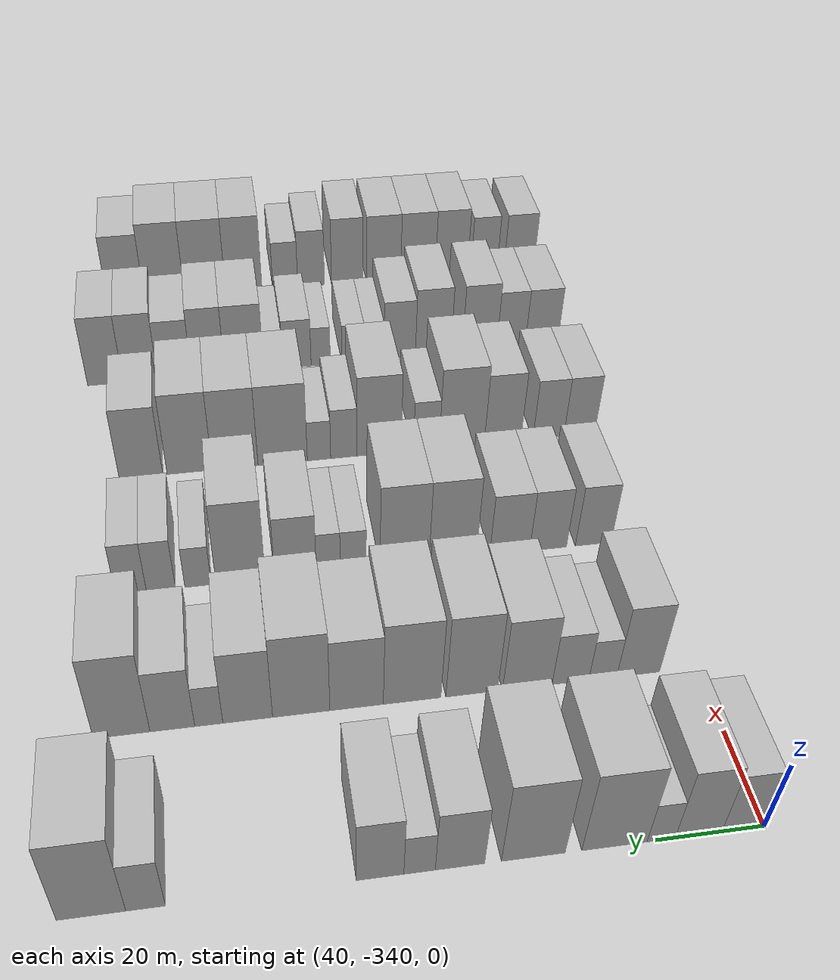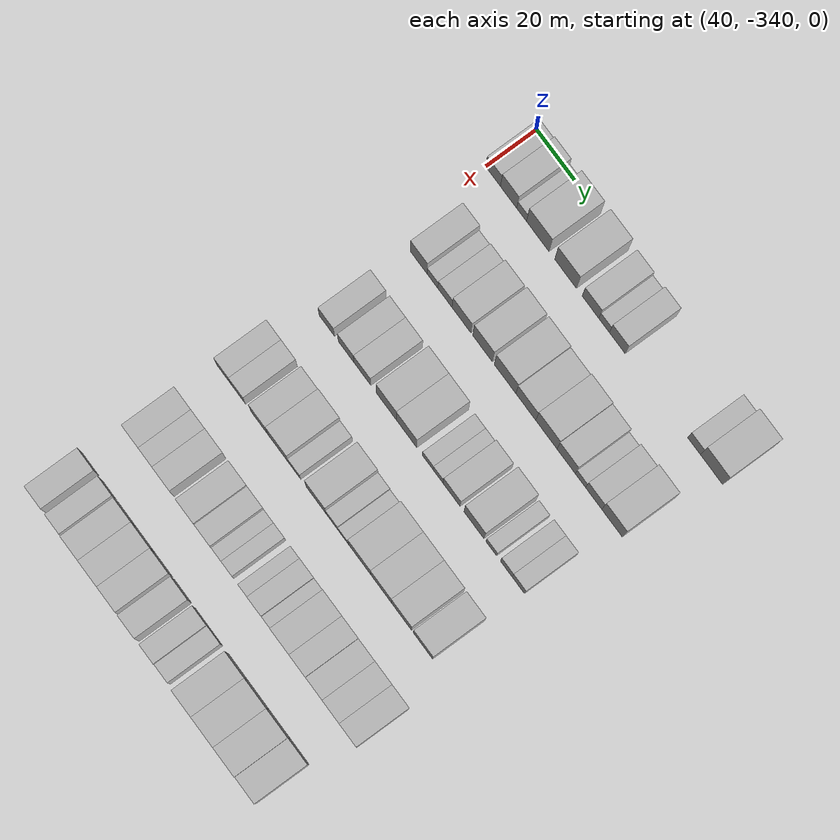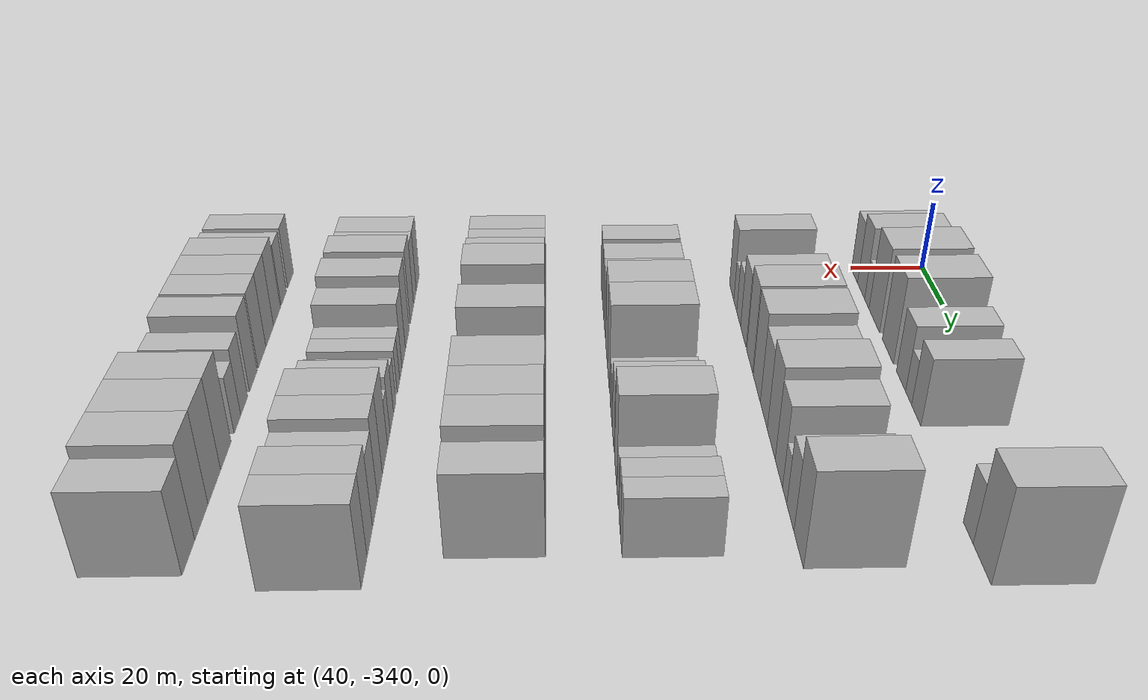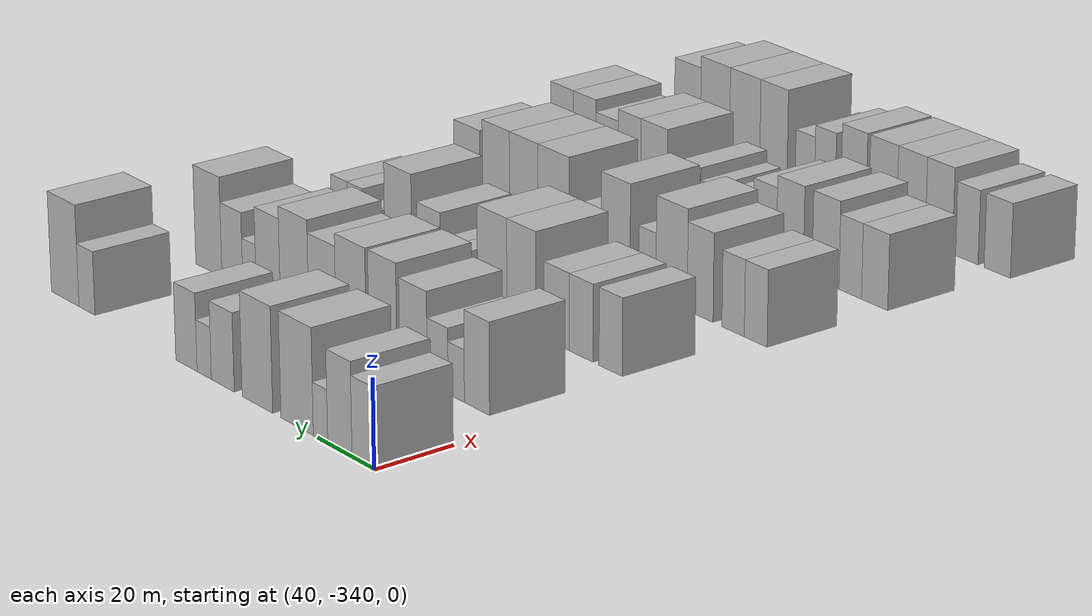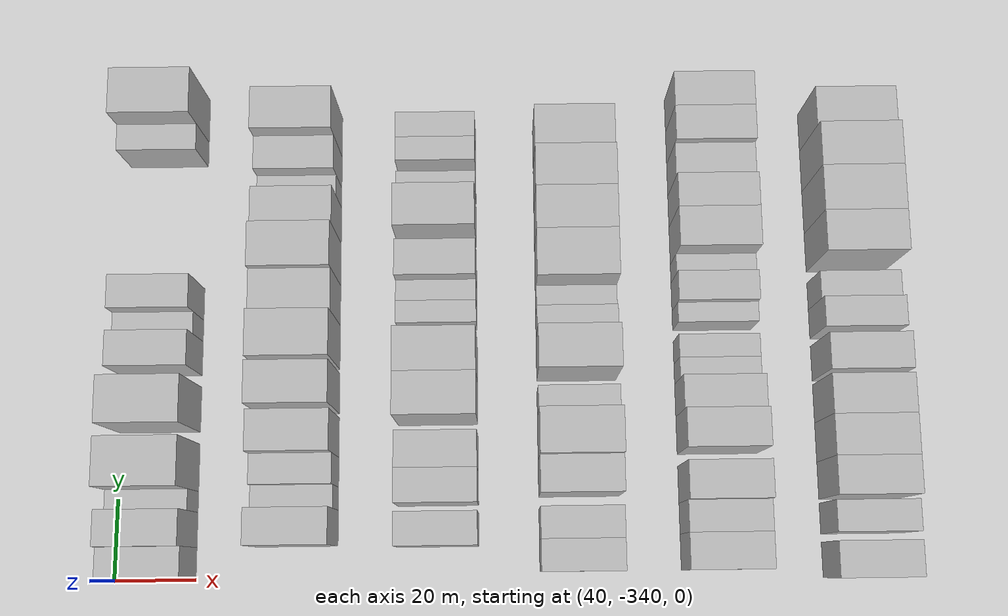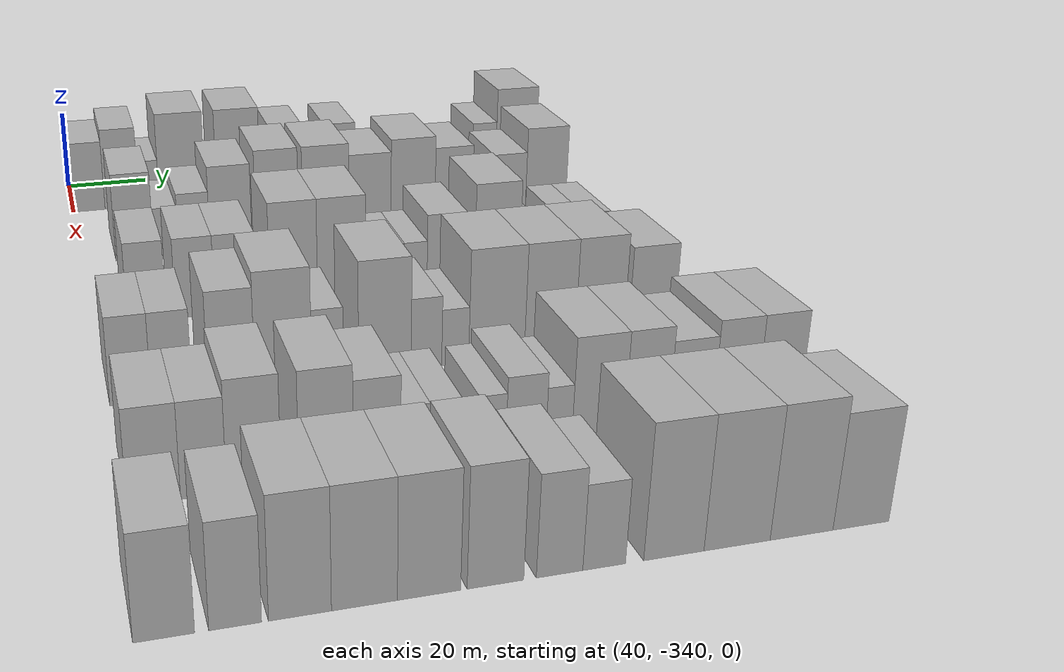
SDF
<sdf version="1.6">
 <world name="default">
  <model name="building_25">
   <static>1</static>
   <pose>50.0000 -335.9181 0 0.000000 0.000000 0.000000</pose>
   <link name="link">
    <pose>0 0 9.00 0 0 0</pose>
    <collision name="collision"><geometry><box><size>20.0000 7.7223 18.0000</size></box></geometry></collision>
    <visual name="visual">
     <cast_shadows>0</cast_shadows>
     <geometry><box><size>20.0000 7.7223 18.0000</size></box></geometry>
     <material>
      <script>
       <uri>model://HANNAS_wall/materials/scripts</uri>
       <uri>model://HANNAS_wall/materials/textures</uri>
       <name>vrc/HANNAS_wall</name>
      </script>
     </material>
    </visual>
   </link>
  </model>
  <model name="building_26">
   <static>1</static>
   <pose>50.0000 -327.7426 0 0.000000 0.000000 0.000000</pose>
   <link name="link">
    <pose>0 0 10.50 0 0 0</pose>
    <collision name="collision"><geometry><box><size>20.0000 8.6288 21.0000</size></box></geometry></collision>
    <visual name="visual">
     <cast_shadows>0</cast_shadows>
     <geometry><box><size>20.0000 8.6288 21.0000</size></box></geometry>
     <material>
      <script>
       <uri>model://HANNAS_wall/materials/scripts</uri>
       <uri>model://HANNAS_wall/materials/textures</uri>
       <name>vrc/HANNAS_wall</name>
      </script>
     </material>
    </visual>
   </link>
  </model>
  <model name="building_27">
   <static>1</static>
   <pose>50.0000 -320.8483 0 0.000000 0.000000 0.000000</pose>
   <link name="link">
    <pose>0 0 6.00 0 0 0</pose>
    <collision name="collision"><geometry><box><size>20.0000 5.1598 12.0000</size></box></geometry></collision>
    <visual name="visual">
     <cast_shadows>0</cast_shadows>
     <geometry><box><size>20.0000 5.1598 12.0000</size></box></geometry>
     <material>
      <script>
       <uri>model://HANNAS_wall/materials/scripts</uri>
       <uri>model://HANNAS_wall/materials/textures</uri>
       <name>vrc/HANNAS_wall</name>
      </script>
     </material>
    </visual>
   </link>
  </model>
  <model name="building_28">
   <static>1</static>
   <pose>50.0000 -312.3385 0 0.000000 0.000000 0.000000</pose>
   <link name="link">
    <pose>0 0 12.00 0 0 0</pose>
    <collision name="collision"><geometry><box><size>20.0000 11.8596 24.0000</size></box></geometry></collision>
    <visual name="visual">
     <cast_shadows>0</cast_shadows>
     <geometry><box><size>20.0000 11.8596 24.0000</size></box></geometry>
     <material>
      <script>
       <uri>model://HANNAS_wall/materials/scripts</uri>
       <uri>model://HANNAS_wall/materials/textures</uri>
       <name>vrc/HANNAS_wall</name>
      </script>
     </material>
    </visual>
   </link>
  </model>
  <model name="building_29">
   <static>1</static>
   <pose>50.0000 -297.6887 0 0.000000 0.000000 0.000000</pose>
   <link name="link">
    <pose>0 0 12.00 0 0 0</pose>
    <collision name="collision"><geometry><box><size>20.0000 11.4401 24.0000</size></box></geometry></collision>
    <visual name="visual">
     <cast_shadows>0</cast_shadows>
     <geometry><box><size>20.0000 11.4401 24.0000</size></box></geometry>
     <material>
      <script>
       <uri>model://HANNAS_wall/materials/scripts</uri>
       <uri>model://HANNAS_wall/materials/textures</uri>
       <name>vrc/HANNAS_wall</name>
      </script>
     </material>
    </visual>
   </link>
  </model>
  <model name="building_30">
   <static>1</static>
   <pose>50.0000 -284.5930 0 0.000000 0.000000 0.000000</pose>
   <link name="link">
    <pose>0 0 9.00 0 0 0</pose>
    <collision name="collision"><geometry><box><size>20.0000 8.7511 18.0000</size></box></geometry></collision>
    <visual name="visual">
     <cast_shadows>0</cast_shadows>
     <geometry><box><size>20.0000 8.7511 18.0000</size></box></geometry>
     <material>
      <script>
       <uri>model://HANNAS_wall/materials/scripts</uri>
       <uri>model://HANNAS_wall/materials/textures</uri>
       <name>vrc/HANNAS_wall</name>
      </script>
     </material>
    </visual>
   </link>
  </model>
  <model name="building_31">
   <static>1</static>
   <pose>50.0000 -277.4589 0 0.000000 0.000000 0.000000</pose>
   <link name="link">
    <pose>0 0 6.00 0 0 0</pose>
    <collision name="collision"><geometry><box><size>20.0000 5.5171 12.0000</size></box></geometry></collision>
    <visual name="visual">
     <cast_shadows>0</cast_shadows>
     <geometry><box><size>20.0000 5.5171 12.0000</size></box></geometry>
     <material>
      <script>
       <uri>model://HANNAS_wall/materials/scripts</uri>
       <uri>model://HANNAS_wall/materials/textures</uri>
       <name>vrc/HANNAS_wall</name>
      </script>
     </material>
    </visual>
   </link>
  </model>
  <model name="building_32">
   <static>1</static>
   <pose>50.0000 -270.5538 0 0.000000 0.000000 0.000000</pose>
   <link name="link">
    <pose>0 0 9.00 0 0 0</pose>
    <collision name="collision"><geometry><box><size>20.0000 8.2931 18.0000</size></box></geometry></collision>
    <visual name="visual">
     <cast_shadows>0</cast_shadows>
     <geometry><box><size>20.0000 8.2931 18.0000</size></box></geometry>
     <material>
      <script>
       <uri>model://HANNAS_wall/materials/scripts</uri>
       <uri>model://HANNAS_wall/materials/textures</uri>
       <name>vrc/HANNAS_wall</name>
      </script>
     </material>
    </visual>
   </link>
  </model>
  <model name="building_33">
   <static>1</static>
   <pose>50.0000 -230.4145 0 0.000000 0.000000 0.000000</pose>
   <link name="link">
    <pose>0 0 7.50 0 0 0</pose>
    <collision name="collision"><geometry><box><size>20.0000 6.6618 15.0000</size></box></geometry></collision>
    <visual name="visual">
     <cast_shadows>0</cast_shadows>
     <geometry><box><size>20.0000 6.6618 15.0000</size></box></geometry>
     <material>
      <script>
       <uri>model://HANNAS_wall/materials/scripts</uri>
       <uri>model://HANNAS_wall/materials/textures</uri>
       <name>vrc/HANNAS_wall</name>
      </script>
     </material>
    </visual>
   </link>
  </model>
  <model name="building_34">
   <static>1</static>
   <pose>50.0000 -221.2916 0 0.000000 0.000000 0.000000</pose>
   <link name="link">
    <pose>0 0 12.00 0 0 0</pose>
    <collision name="collision"><geometry><box><size>20.0000 11.5840 24.0000</size></box></geometry></collision>
    <visual name="visual">
     <cast_shadows>0</cast_shadows>
     <geometry><box><size>20.0000 11.5840 24.0000</size></box></geometry>
     <material>
      <script>
       <uri>model://HANNAS_wall/materials/scripts</uri>
       <uri>model://HANNAS_wall/materials/textures</uri>
       <name>vrc/HANNAS_wall</name>
      </script>
     </material>
    </visual>
   </link>
  </model>
  <model name="building_134">
   <static>1</static>
   <pose>85.0000 -327.7752 0 0.000000 0.000000 0.000000</pose>
   <link name="link">
    <pose>0 0 10.50 0 0 0</pose>
    <collision name="collision"><geometry><box><size>20.0000 8.8171 21.0000</size></box></geometry></collision>
    <visual name="visual">
     <cast_shadows>0</cast_shadows>
     <geometry><box><size>20.0000 8.8171 21.0000</size></box></geometry>
     <material>
      <script>
       <uri>model://HANNAS_wall/materials/scripts</uri>
       <uri>model://HANNAS_wall/materials/textures</uri>
       <name>vrc/HANNAS_wall</name>
      </script>
     </material>
    </visual>
   </link>
  </model>
  <model name="building_135">
   <static>1</static>
   <pose>85.0000 -320.5003 0 0.000000 0.000000 0.000000</pose>
   <link name="link">
    <pose>0 0 6.00 0 0 0</pose>
    <collision name="collision"><geometry><box><size>20.0000 5.7327 12.0000</size></box></geometry></collision>
    <visual name="visual">
     <cast_shadows>0</cast_shadows>
     <geometry><box><size>20.0000 5.7327 12.0000</size></box></geometry>
     <material>
      <script>
       <uri>model://HANNAS_wall/materials/scripts</uri>
       <uri>model://HANNAS_wall/materials/textures</uri>
       <name>vrc/HANNAS_wall</name>
      </script>
     </material>
    </visual>
   </link>
  </model>
  <model name="building_136">
   <static>1</static>
   <pose>85.0000 -313.9180 0 0.000000 0.000000 0.000000</pose>
   <link name="link">
    <pose>0 0 7.50 0 0 0</pose>
    <collision name="collision"><geometry><box><size>20.0000 7.4320 15.0000</size></box></geometry></collision>
    <visual name="visual">
     <cast_shadows>0</cast_shadows>
     <geometry><box><size>20.0000 7.4320 15.0000</size></box></geometry>
     <material>
      <script>
       <uri>model://HANNAS_wall/materials/scripts</uri>
       <uri>model://HANNAS_wall/materials/textures</uri>
       <name>vrc/HANNAS_wall</name>
      </script>
     </material>
    </visual>
   </link>
  </model>
  <model name="building_137">
   <static>1</static>
   <pose>85.0000 -305.1962 0 0.000000 0.000000 0.000000</pose>
   <link name="link">
    <pose>0 0 10.50 0 0 0</pose>
    <collision name="collision"><geometry><box><size>20.0000 10.0117 21.0000</size></box></geometry></collision>
    <visual name="visual">
     <cast_shadows>0</cast_shadows>
     <geometry><box><size>20.0000 10.0117 21.0000</size></box></geometry>
     <material>
      <script>
       <uri>model://HANNAS_wall/materials/scripts</uri>
       <uri>model://HANNAS_wall/materials/textures</uri>
       <name>vrc/HANNAS_wall</name>
      </script>
     </material>
    </visual>
   </link>
  </model>
  <model name="building_138">
   <static>1</static>
   <pose>85.0000 -294.0328 0 0.000000 0.000000 0.000000</pose>
   <link name="link">
    <pose>0 0 12.00 0 0 0</pose>
    <collision name="collision"><geometry><box><size>20.0000 10.3150 24.0000</size></box></geometry></collision>
    <visual name="visual">
     <cast_shadows>0</cast_shadows>
     <geometry><box><size>20.0000 10.3150 24.0000</size></box></geometry>
     <material>
      <script>
       <uri>model://HANNAS_wall/materials/scripts</uri>
       <uri>model://HANNAS_wall/materials/textures</uri>
       <name>vrc/HANNAS_wall</name>
      </script>
     </material>
    </visual>
   </link>
  </model>
  <model name="building_139">
   <static>1</static>
   <pose>85.0000 -282.1929 0 0.000000 0.000000 0.000000</pose>
   <link name="link">
    <pose>0 0 12.00 0 0 0</pose>
    <collision name="collision"><geometry><box><size>20.0000 11.3649 24.0000</size></box></geometry></collision>
    <visual name="visual">
     <cast_shadows>0</cast_shadows>
     <geometry><box><size>20.0000 11.3649 24.0000</size></box></geometry>
     <material>
      <script>
       <uri>model://HANNAS_wall/materials/scripts</uri>
       <uri>model://HANNAS_wall/materials/textures</uri>
       <name>vrc/HANNAS_wall</name>
      </script>
     </material>
    </visual>
   </link>
  </model>
  <model name="building_140">
   <static>1</static>
   <pose>85.0000 -271.2758 0 0.000000 0.000000 0.000000</pose>
   <link name="link">
    <pose>0 0 10.50 0 0 0</pose>
    <collision name="collision"><geometry><box><size>20.0000 10.4692 21.0000</size></box></geometry></collision>
    <visual name="visual">
     <cast_shadows>0</cast_shadows>
     <geometry><box><size>20.0000 10.4692 21.0000</size></box></geometry>
     <material>
      <script>
       <uri>model://HANNAS_wall/materials/scripts</uri>
       <uri>model://HANNAS_wall/materials/textures</uri>
       <name>vrc/HANNAS_wall</name>
      </script>
     </material>
    </visual>
   </link>
  </model>
  <model name="building_141">
   <static>1</static>
   <pose>85.0000 -260.4936 0 0.000000 0.000000 0.000000</pose>
   <link name="link">
    <pose>0 0 12.00 0 0 0</pose>
    <collision name="collision"><geometry><box><size>20.0000 11.0952 24.0000</size></box></geometry></collision>
    <visual name="visual">
     <cast_shadows>0</cast_shadows>
     <geometry><box><size>20.0000 11.0952 24.0000</size></box></geometry>
     <material>
      <script>
       <uri>model://HANNAS_wall/materials/scripts</uri>
       <uri>model://HANNAS_wall/materials/textures</uri>
       <name>vrc/HANNAS_wall</name>
      </script>
     </material>
    </visual>
   </link>
  </model>
  <model name="building_142">
   <static>1</static>
   <pose>85.0000 -250.1634 0 0.000000 0.000000 0.000000</pose>
   <link name="link">
    <pose>0 0 10.50 0 0 0</pose>
    <collision name="collision"><geometry><box><size>20.0000 9.5652 21.0000</size></box></geometry></collision>
    <visual name="visual">
     <cast_shadows>0</cast_shadows>
     <geometry><box><size>20.0000 9.5652 21.0000</size></box></geometry>
     <material>
      <script>
       <uri>model://HANNAS_wall/materials/scripts</uri>
       <uri>model://HANNAS_wall/materials/textures</uri>
       <name>vrc/HANNAS_wall</name>
      </script>
     </material>
    </visual>
   </link>
  </model>
  <model name="building_143">
   <static>1</static>
   <pose>85.0000 -242.6967 0 0.000000 0.000000 0.000000</pose>
   <link name="link">
    <pose>0 0 6.00 0 0 0</pose>
    <collision name="collision"><geometry><box><size>20.0000 5.3682 12.0000</size></box></geometry></collision>
    <visual name="visual">
     <cast_shadows>0</cast_shadows>
     <geometry><box><size>20.0000 5.3682 12.0000</size></box></geometry>
     <material>
      <script>
       <uri>model://HANNAS_wall/materials/scripts</uri>
       <uri>model://HANNAS_wall/materials/textures</uri>
       <name>vrc/HANNAS_wall</name>
      </script>
     </material>
    </visual>
   </link>
  </model>
  <model name="building_144">
   <static>1</static>
   <pose>85.0000 -235.7684 0 0.000000 0.000000 0.000000</pose>
   <link name="link">
    <pose>0 0 9.00 0 0 0</pose>
    <collision name="collision"><geometry><box><size>20.0000 8.4884 18.0000</size></box></geometry></collision>
    <visual name="visual">
     <cast_shadows>0</cast_shadows>
     <geometry><box><size>20.0000 8.4884 18.0000</size></box></geometry>
     <material>
      <script>
       <uri>model://HANNAS_wall/materials/scripts</uri>
       <uri>model://HANNAS_wall/materials/textures</uri>
       <name>vrc/HANNAS_wall</name>
      </script>
     </material>
    </visual>
   </link>
  </model>
  <model name="building_145">
   <static>1</static>
   <pose>85.0000 -226.1846 0 0.000000 0.000000 0.000000</pose>
   <link name="link">
    <pose>0 0 12.00 0 0 0</pose>
    <collision name="collision"><geometry><box><size>20.0000 10.6792 24.0000</size></box></geometry></collision>
    <visual name="visual">
     <cast_shadows>0</cast_shadows>
     <geometry><box><size>20.0000 10.6792 24.0000</size></box></geometry>
     <material>
      <script>
       <uri>model://HANNAS_wall/materials/scripts</uri>
       <uri>model://HANNAS_wall/materials/textures</uri>
       <name>vrc/HANNAS_wall</name>
      </script>
     </material>
    </visual>
   </link>
  </model>
  <model name="building_258">
   <static>1</static>
   <pose>120.0000 -328.6332 0 0.000000 0.000000 0.000000</pose>
   <link name="link">
    <pose>0 0 9.00 0 0 0</pose>
    <collision name="collision"><geometry><box><size>20.0000 8.1042 18.0000</size></box></geometry></collision>
    <visual name="visual">
     <cast_shadows>0</cast_shadows>
     <geometry><box><size>20.0000 8.1042 18.0000</size></box></geometry>
     <material>
      <script>
       <uri>model://HANNAS_wall/materials/scripts</uri>
       <uri>model://HANNAS_wall/materials/textures</uri>
       <name>vrc/HANNAS_wall</name>
      </script>
     </material>
    </visual>
   </link>
  </model>
  <model name="building_259">
   <static>1</static>
   <pose>120.0000 -318.4347 0 0.000000 0.000000 0.000000</pose>
   <link name="link">
    <pose>0 0 9.00 0 0 0</pose>
    <collision name="collision"><geometry><box><size>20.0000 8.2929 18.0000</size></box></geometry></collision>
    <visual name="visual">
     <cast_shadows>0</cast_shadows>
     <geometry><box><size>20.0000 8.2929 18.0000</size></box></geometry>
     <material>
      <script>
       <uri>model://HANNAS_wall/materials/scripts</uri>
       <uri>model://HANNAS_wall/materials/textures</uri>
       <name>vrc/HANNAS_wall</name>
      </script>
     </material>
    </visual>
   </link>
  </model>
  <model name="building_260">
   <static>1</static>
   <pose>120.0000 -309.8287 0 0.000000 0.000000 0.000000</pose>
   <link name="link">
    <pose>0 0 9.00 0 0 0</pose>
    <collision name="collision"><geometry><box><size>20.0000 8.9193 18.0000</size></box></geometry></collision>
    <visual name="visual">
     <cast_shadows>0</cast_shadows>
     <geometry><box><size>20.0000 8.9193 18.0000</size></box></geometry>
     <material>
      <script>
       <uri>model://HANNAS_wall/materials/scripts</uri>
       <uri>model://HANNAS_wall/materials/textures</uri>
       <name>vrc/HANNAS_wall</name>
      </script>
     </material>
    </visual>
   </link>
  </model>
  <model name="building_261">
   <static>1</static>
   <pose>120.0000 -297.1497 0 0.000000 0.000000 0.000000</pose>
   <link name="link">
    <pose>0 0 12.00 0 0 0</pose>
    <collision name="collision"><geometry><box><size>20.0000 10.4387 24.0000</size></box></geometry></collision>
    <visual name="visual">
     <cast_shadows>0</cast_shadows>
     <geometry><box><size>20.0000 10.4387 24.0000</size></box></geometry>
     <material>
      <script>
       <uri>model://HANNAS_wall/materials/scripts</uri>
       <uri>model://HANNAS_wall/materials/textures</uri>
       <name>vrc/HANNAS_wall</name>
      </script>
     </material>
    </visual>
   </link>
  </model>
  <model name="building_262">
   <static>1</static>
   <pose>120.0000 -286.5375 0 0.000000 0.000000 0.000000</pose>
   <link name="link">
    <pose>0 0 12.00 0 0 0</pose>
    <collision name="collision"><geometry><box><size>20.0000 10.7856 24.0000</size></box></geometry></collision>
    <visual name="visual">
     <cast_shadows>0</cast_shadows>
     <geometry><box><size>20.0000 10.7856 24.0000</size></box></geometry>
     <material>
      <script>
       <uri>model://HANNAS_wall/materials/scripts</uri>
       <uri>model://HANNAS_wall/materials/textures</uri>
       <name>vrc/HANNAS_wall</name>
      </script>
     </material>
    </visual>
   </link>
  </model>
  <model name="building_263">
   <static>1</static>
   <pose>120.0000 -275.3424 0 0.000000 0.000000 0.000000</pose>
   <link name="link">
    <pose>0 0 6.00 0 0 0</pose>
    <collision name="collision"><geometry><box><size>20.0000 5.6045 12.0000</size></box></geometry></collision>
    <visual name="visual">
     <cast_shadows>0</cast_shadows>
     <geometry><box><size>20.0000 5.6045 12.0000</size></box></geometry>
     <material>
      <script>
       <uri>model://HANNAS_wall/materials/scripts</uri>
       <uri>model://HANNAS_wall/materials/textures</uri>
       <name>vrc/HANNAS_wall</name>
      </script>
     </material>
    </visual>
   </link>
  </model>
  <model name="building_264">
   <static>1</static>
   <pose>120.0000 -269.9381 0 0.000000 0.000000 0.000000</pose>
   <link name="link">
    <pose>0 0 6.00 0 0 0</pose>
    <collision name="collision"><geometry><box><size>20.0000 5.2041 12.0000</size></box></geometry></collision>
    <visual name="visual">
     <cast_shadows>0</cast_shadows>
     <geometry><box><size>20.0000 5.2041 12.0000</size></box></geometry>
     <material>
      <script>
       <uri>model://HANNAS_wall/materials/scripts</uri>
       <uri>model://HANNAS_wall/materials/textures</uri>
       <name>vrc/HANNAS_wall</name>
      </script>
     </material>
    </visual>
   </link>
  </model>
  <model name="building_265">
   <static>1</static>
   <pose>120.0000 -262.8564 0 0.000000 0.000000 0.000000</pose>
   <link name="link">
    <pose>0 0 9.00 0 0 0</pose>
    <collision name="collision"><geometry><box><size>20.0000 8.9593 18.0000</size></box></geometry></collision>
    <visual name="visual">
     <cast_shadows>0</cast_shadows>
     <geometry><box><size>20.0000 8.9593 18.0000</size></box></geometry>
     <material>
      <script>
       <uri>model://HANNAS_wall/materials/scripts</uri>
       <uri>model://HANNAS_wall/materials/textures</uri>
       <name>vrc/HANNAS_wall</name>
      </script>
     </material>
    </visual>
   </link>
  </model>
  <model name="building_266">
   <static>1</static>
   <pose>120.0000 -251.1161 0 0.000000 0.000000 0.000000</pose>
   <link name="link">
    <pose>0 0 12.00 0 0 0</pose>
    <collision name="collision"><geometry><box><size>20.0000 10.5214 24.0000</size></box></geometry></collision>
    <visual name="visual">
     <cast_shadows>0</cast_shadows>
     <geometry><box><size>20.0000 10.5214 24.0000</size></box></geometry>
     <material>
      <script>
       <uri>model://HANNAS_wall/materials/scripts</uri>
       <uri>model://HANNAS_wall/materials/textures</uri>
       <name>vrc/HANNAS_wall</name>
      </script>
     </material>
    </visual>
   </link>
  </model>
  <model name="building_267">
   <static>1</static>
   <pose>120.0000 -242.0557 0 0.000000 0.000000 0.000000</pose>
   <link name="link">
    <pose>0 0 6.00 0 0 0</pose>
    <collision name="collision"><geometry><box><size>20.0000 5.5993 12.0000</size></box></geometry></collision>
    <visual name="visual">
     <cast_shadows>0</cast_shadows>
     <geometry><box><size>20.0000 5.5993 12.0000</size></box></geometry>
     <material>
      <script>
       <uri>model://HANNAS_wall/materials/scripts</uri>
       <uri>model://HANNAS_wall/materials/textures</uri>
       <name>vrc/HANNAS_wall</name>
      </script>
     </material>
    </visual>
   </link>
  </model>
  <model name="building_268">
   <static>1</static>
   <pose>120.0000 -234.1962 0 0.000000 0.000000 0.000000</pose>
   <link name="link">
    <pose>0 0 7.50 0 0 0</pose>
    <collision name="collision"><geometry><box><size>20.0000 6.1197 15.0000</size></box></geometry></collision>
    <visual name="visual">
     <cast_shadows>0</cast_shadows>
     <geometry><box><size>20.0000 6.1197 15.0000</size></box></geometry>
     <material>
      <script>
       <uri>model://HANNAS_wall/materials/scripts</uri>
       <uri>model://HANNAS_wall/materials/textures</uri>
       <name>vrc/HANNAS_wall</name>
      </script>
     </material>
    </visual>
   </link>
  </model>
  <model name="building_269">
   <static>1</static>
   <pose>120.0000 -227.8939 0 0.000000 0.000000 0.000000</pose>
   <link name="link">
    <pose>0 0 7.50 0 0 0</pose>
    <collision name="collision"><geometry><box><size>20.0000 6.4849 15.0000</size></box></geometry></collision>
    <visual name="visual">
     <cast_shadows>0</cast_shadows>
     <geometry><box><size>20.0000 6.4849 15.0000</size></box></geometry>
     <material>
      <script>
       <uri>model://HANNAS_wall/materials/scripts</uri>
       <uri>model://HANNAS_wall/materials/textures</uri>
       <name>vrc/HANNAS_wall</name>
      </script>
     </material>
    </visual>
   </link>
  </model>
  <model name="building_379">
   <static>1</static>
   <pose>155.0000 -335.2239 0 0.000000 0.000000 0.000000</pose>
   <link name="link">
    <pose>0 0 9.00 0 0 0</pose>
    <collision name="collision"><geometry><box><size>20.0000 7.6777 18.0000</size></box></geometry></collision>
    <visual name="visual">
     <cast_shadows>0</cast_shadows>
     <geometry><box><size>20.0000 7.6777 18.0000</size></box></geometry>
     <material>
      <script>
       <uri>model://HANNAS_wall/materials/scripts</uri>
       <uri>model://HANNAS_wall/materials/textures</uri>
       <name>vrc/HANNAS_wall</name>
      </script>
     </material>
    </visual>
   </link>
  </model>
  <model name="building_380">
   <static>1</static>
   <pose>155.0000 -327.5606 0 0.000000 0.000000 0.000000</pose>
   <link name="link">
    <pose>0 0 9.00 0 0 0</pose>
    <collision name="collision"><geometry><box><size>20.0000 7.6490 18.0000</size></box></geometry></collision>
    <visual name="visual">
     <cast_shadows>0</cast_shadows>
     <geometry><box><size>20.0000 7.6490 18.0000</size></box></geometry>
     <material>
      <script>
       <uri>model://HANNAS_wall/materials/scripts</uri>
       <uri>model://HANNAS_wall/materials/textures</uri>
       <name>vrc/HANNAS_wall</name>
      </script>
     </material>
    </visual>
   </link>
  </model>
  <model name="building_381">
   <static>1</static>
   <pose>155.0000 -316.2588 0 0.000000 0.000000 0.000000</pose>
   <link name="link">
    <pose>0 0 10.50 0 0 0</pose>
    <collision name="collision"><geometry><box><size>20.0000 8.9546 21.0000</size></box></geometry></collision>
    <visual name="visual">
     <cast_shadows>0</cast_shadows>
     <geometry><box><size>20.0000 8.9546 21.0000</size></box></geometry>
     <material>
      <script>
       <uri>model://HANNAS_wall/materials/scripts</uri>
       <uri>model://HANNAS_wall/materials/textures</uri>
       <name>vrc/HANNAS_wall</name>
      </script>
     </material>
    </visual>
   </link>
  </model>
  <model name="building_382">
   <static>1</static>
   <pose>155.0000 -306.2711 0 0.000000 0.000000 0.000000</pose>
   <link name="link">
    <pose>0 0 12.00 0 0 0</pose>
    <collision name="collision"><geometry><box><size>20.0000 11.0209 24.0000</size></box></geometry></collision>
    <visual name="visual">
     <cast_shadows>0</cast_shadows>
     <geometry><box><size>20.0000 11.0209 24.0000</size></box></geometry>
     <material>
      <script>
       <uri>model://HANNAS_wall/materials/scripts</uri>
       <uri>model://HANNAS_wall/materials/textures</uri>
       <name>vrc/HANNAS_wall</name>
      </script>
     </material>
    </visual>
   </link>
  </model>
  <model name="building_383">
   <static>1</static>
   <pose>155.0000 -297.6404 0 0.000000 0.000000 0.000000</pose>
   <link name="link">
    <pose>0 0 7.50 0 0 0</pose>
    <collision name="collision"><geometry><box><size>20.0000 6.2404 15.0000</size></box></geometry></collision>
    <visual name="visual">
     <cast_shadows>0</cast_shadows>
     <geometry><box><size>20.0000 6.2404 15.0000</size></box></geometry>
     <material>
      <script>
       <uri>model://HANNAS_wall/materials/scripts</uri>
       <uri>model://HANNAS_wall/materials/textures</uri>
       <name>vrc/HANNAS_wall</name>
      </script>
     </material>
    </visual>
   </link>
  </model>
  <model name="building_384">
   <static>1</static>
   <pose>155.0000 -286.2390 0 0.000000 0.000000 0.000000</pose>
   <link name="link">
    <pose>0 0 12.00 0 0 0</pose>
    <collision name="collision"><geometry><box><size>20.0000 10.5623 24.0000</size></box></geometry></collision>
    <visual name="visual">
     <cast_shadows>0</cast_shadows>
     <geometry><box><size>20.0000 10.5623 24.0000</size></box></geometry>
     <material>
      <script>
       <uri>model://HANNAS_wall/materials/scripts</uri>
       <uri>model://HANNAS_wall/materials/textures</uri>
       <name>vrc/HANNAS_wall</name>
      </script>
     </material>
    </visual>
   </link>
  </model>
  <model name="building_385">
   <static>1</static>
   <pose>155.0000 -277.8302 0 0.000000 0.000000 0.000000</pose>
   <link name="link">
    <pose>0 0 7.50 0 0 0</pose>
    <collision name="collision"><geometry><box><size>20.0000 6.2553 15.0000</size></box></geometry></collision>
    <visual name="visual">
     <cast_shadows>0</cast_shadows>
     <geometry><box><size>20.0000 6.2553 15.0000</size></box></geometry>
     <material>
      <script>
       <uri>model://HANNAS_wall/materials/scripts</uri>
       <uri>model://HANNAS_wall/materials/textures</uri>
       <name>vrc/HANNAS_wall</name>
      </script>
     </material>
    </visual>
   </link>
  </model>
  <model name="building_386">
   <static>1</static>
   <pose>155.0000 -271.9249 0 0.000000 0.000000 0.000000</pose>
   <link name="link">
    <pose>0 0 6.00 0 0 0</pose>
    <collision name="collision"><geometry><box><size>20.0000 5.5554 12.0000</size></box></geometry></collision>
    <visual name="visual">
     <cast_shadows>0</cast_shadows>
     <geometry><box><size>20.0000 5.5554 12.0000</size></box></geometry>
     <material>
      <script>
       <uri>model://HANNAS_wall/materials/scripts</uri>
       <uri>model://HANNAS_wall/materials/textures</uri>
       <name>vrc/HANNAS_wall</name>
      </script>
     </material>
    </visual>
   </link>
  </model>
  <model name="building_387">
   <static>1</static>
   <pose>155.0000 -263.3216 0 0.000000 0.000000 0.000000</pose>
   <link name="link">
    <pose>0 0 12.00 0 0 0</pose>
    <collision name="collision"><geometry><box><size>20.0000 11.6512 24.0000</size></box></geometry></collision>
    <visual name="visual">
     <cast_shadows>0</cast_shadows>
     <geometry><box><size>20.0000 11.6512 24.0000</size></box></geometry>
     <material>
      <script>
       <uri>model://HANNAS_wall/materials/scripts</uri>
       <uri>model://HANNAS_wall/materials/textures</uri>
       <name>vrc/HANNAS_wall</name>
      </script>
     </material>
    </visual>
   </link>
  </model>
  <model name="building_388">
   <static>1</static>
   <pose>155.0000 -252.1328 0 0.000000 0.000000 0.000000</pose>
   <link name="link">
    <pose>0 0 12.00 0 0 0</pose>
    <collision name="collision"><geometry><box><size>20.0000 10.7264 24.0000</size></box></geometry></collision>
    <visual name="visual">
     <cast_shadows>0</cast_shadows>
     <geometry><box><size>20.0000 10.7264 24.0000</size></box></geometry>
     <material>
      <script>
       <uri>model://HANNAS_wall/materials/scripts</uri>
       <uri>model://HANNAS_wall/materials/textures</uri>
       <name>vrc/HANNAS_wall</name>
      </script>
     </material>
    </visual>
   </link>
  </model>
  <model name="building_389">
   <static>1</static>
   <pose>155.0000 -241.5049 0 0.000000 0.000000 0.000000</pose>
   <link name="link">
    <pose>0 0 12.00 0 0 0</pose>
    <collision name="collision"><geometry><box><size>20.0000 10.5294 24.0000</size></box></geometry></collision>
    <visual name="visual">
     <cast_shadows>0</cast_shadows>
     <geometry><box><size>20.0000 10.5294 24.0000</size></box></geometry>
     <material>
      <script>
       <uri>model://HANNAS_wall/materials/scripts</uri>
       <uri>model://HANNAS_wall/materials/textures</uri>
       <name>vrc/HANNAS_wall</name>
      </script>
     </material>
    </visual>
   </link>
  </model>
  <model name="building_390">
   <static>1</static>
   <pose>155.0000 -230.2025 0 0.000000 0.000000 0.000000</pose>
   <link name="link">
    <pose>0 0 10.50 0 0 0</pose>
    <collision name="collision"><geometry><box><size>20.0000 10.0753 21.0000</size></box></geometry></collision>
    <visual name="visual">
     <cast_shadows>0</cast_shadows>
     <geometry><box><size>20.0000 10.0753 21.0000</size></box></geometry>
     <material>
      <script>
       <uri>model://HANNAS_wall/materials/scripts</uri>
       <uri>model://HANNAS_wall/materials/textures</uri>
       <name>vrc/HANNAS_wall</name>
      </script>
     </material>
    </visual>
   </link>
  </model>
  <model name="building_505">
   <static>1</static>
   <pose>190.0000 -334.6916 0 0.000000 0.000000 0.000000</pose>
   <link name="link">
    <pose>0 0 9.00 0 0 0</pose>
    <collision name="collision"><geometry><box><size>20.0000 8.7592 18.0000</size></box></geometry></collision>
    <visual name="visual">
     <cast_shadows>0</cast_shadows>
     <geometry><box><size>20.0000 8.7592 18.0000</size></box></geometry>
     <material>
      <script>
       <uri>model://HANNAS_wall/materials/scripts</uri>
       <uri>model://HANNAS_wall/materials/textures</uri>
       <name>vrc/HANNAS_wall</name>
      </script>
     </material>
    </visual>
   </link>
  </model>
  <model name="building_506">
   <static>1</static>
   <pose>190.0000 -326.5006 0 0.000000 0.000000 0.000000</pose>
   <link name="link">
    <pose>0 0 9.00 0 0 0</pose>
    <collision name="collision"><geometry><box><size>20.0000 7.6227 18.0000</size></box></geometry></collision>
    <visual name="visual">
     <cast_shadows>0</cast_shadows>
     <geometry><box><size>20.0000 7.6227 18.0000</size></box></geometry>
     <material>
      <script>
       <uri>model://HANNAS_wall/materials/scripts</uri>
       <uri>model://HANNAS_wall/materials/textures</uri>
       <name>vrc/HANNAS_wall</name>
      </script>
     </material>
    </visual>
   </link>
  </model>
  <model name="building_507">
   <static>1</static>
   <pose>190.0000 -318.0907 0 0.000000 0.000000 0.000000</pose>
   <link name="link">
    <pose>0 0 10.50 0 0 0</pose>
    <collision name="collision"><geometry><box><size>20.0000 9.1973 21.0000</size></box></geometry></collision>
    <visual name="visual">
     <cast_shadows>0</cast_shadows>
     <geometry><box><size>20.0000 9.1973 21.0000</size></box></geometry>
     <material>
      <script>
       <uri>model://HANNAS_wall/materials/scripts</uri>
       <uri>model://HANNAS_wall/materials/textures</uri>
       <name>vrc/HANNAS_wall</name>
      </script>
     </material>
    </visual>
   </link>
  </model>
  <model name="building_508">
   <static>1</static>
   <pose>190.0000 -305.7966 0 0.000000 0.000000 0.000000</pose>
   <link name="link">
    <pose>0 0 10.50 0 0 0</pose>
    <collision name="collision"><geometry><box><size>20.0000 9.3907 21.0000</size></box></geometry></collision>
    <visual name="visual">
     <cast_shadows>0</cast_shadows>
     <geometry><box><size>20.0000 9.3907 21.0000</size></box></geometry>
     <material>
      <script>
       <uri>model://HANNAS_wall/materials/scripts</uri>
       <uri>model://HANNAS_wall/materials/textures</uri>
       <name>vrc/HANNAS_wall</name>
      </script>
     </material>
    </visual>
   </link>
  </model>
  <model name="building_509">
   <static>1</static>
   <pose>190.0000 -296.9498 0 0.000000 0.000000 0.000000</pose>
   <link name="link">
    <pose>0 0 9.00 0 0 0</pose>
    <collision name="collision"><geometry><box><size>20.0000 8.3030 18.0000</size></box></geometry></collision>
    <visual name="visual">
     <cast_shadows>0</cast_shadows>
     <geometry><box><size>20.0000 8.3030 18.0000</size></box></geometry>
     <material>
      <script>
       <uri>model://HANNAS_wall/materials/scripts</uri>
       <uri>model://HANNAS_wall/materials/textures</uri>
       <name>vrc/HANNAS_wall</name>
      </script>
     </material>
    </visual>
   </link>
  </model>
  <model name="building_510">
   <static>1</static>
   <pose>190.0000 -290.2154 0 0.000000 0.000000 0.000000</pose>
   <link name="link">
    <pose>0 0 6.00 0 0 0</pose>
    <collision name="collision"><geometry><box><size>20.0000 5.1656 12.0000</size></box></geometry></collision>
    <visual name="visual">
     <cast_shadows>0</cast_shadows>
     <geometry><box><size>20.0000 5.1656 12.0000</size></box></geometry>
     <material>
      <script>
       <uri>model://HANNAS_wall/materials/scripts</uri>
       <uri>model://HANNAS_wall/materials/textures</uri>
       <name>vrc/HANNAS_wall</name>
      </script>
     </material>
    </visual>
   </link>
  </model>
  <model name="building_511">
   <static>1</static>
   <pose>190.0000 -284.7365 0 0.000000 0.000000 0.000000</pose>
   <link name="link">
    <pose>0 0 6.00 0 0 0</pose>
    <collision name="collision"><geometry><box><size>20.0000 5.7923 12.0000</size></box></geometry></collision>
    <visual name="visual">
     <cast_shadows>0</cast_shadows>
     <geometry><box><size>20.0000 5.7923 12.0000</size></box></geometry>
     <material>
      <script>
       <uri>model://HANNAS_wall/materials/scripts</uri>
       <uri>model://HANNAS_wall/materials/textures</uri>
       <name>vrc/HANNAS_wall</name>
      </script>
     </material>
    </visual>
   </link>
  </model>
  <model name="building_512">
   <static>1</static>
   <pose>190.0000 -276.3598 0 0.000000 0.000000 0.000000</pose>
   <link name="link">
    <pose>0 0 6.00 0 0 0</pose>
    <collision name="collision"><geometry><box><size>20.0000 4.9611 12.0000</size></box></geometry></collision>
    <visual name="visual">
     <cast_shadows>0</cast_shadows>
     <geometry><box><size>20.0000 4.9611 12.0000</size></box></geometry>
     <material>
      <script>
       <uri>model://HANNAS_wall/materials/scripts</uri>
       <uri>model://HANNAS_wall/materials/textures</uri>
       <name>vrc/HANNAS_wall</name>
      </script>
     </material>
    </visual>
   </link>
  </model>
  <model name="building_513">
   <static>1</static>
   <pose>190.0000 -270.1882 0 0.000000 0.000000 0.000000</pose>
   <link name="link">
    <pose>0 0 7.50 0 0 0</pose>
    <collision name="collision"><geometry><box><size>20.0000 7.3820 15.0000</size></box></geometry></collision>
    <visual name="visual">
     <cast_shadows>0</cast_shadows>
     <geometry><box><size>20.0000 7.3820 15.0000</size></box></geometry>
     <material>
      <script>
       <uri>model://HANNAS_wall/materials/scripts</uri>
       <uri>model://HANNAS_wall/materials/textures</uri>
       <name>vrc/HANNAS_wall</name>
      </script>
     </material>
    </visual>
   </link>
  </model>
  <model name="building_514">
   <static>1</static>
   <pose>190.0000 -264.0544 0 0.000000 0.000000 0.000000</pose>
   <link name="link">
    <pose>0 0 6.00 0 0 0</pose>
    <collision name="collision"><geometry><box><size>20.0000 4.8857 12.0000</size></box></geometry></collision>
    <visual name="visual">
     <cast_shadows>0</cast_shadows>
     <geometry><box><size>20.0000 4.8857 12.0000</size></box></geometry>
     <material>
      <script>
       <uri>model://HANNAS_wall/materials/scripts</uri>
       <uri>model://HANNAS_wall/materials/textures</uri>
       <name>vrc/HANNAS_wall</name>
      </script>
     </material>
    </visual>
   </link>
  </model>
  <model name="building_515">
   <static>1</static>
   <pose>190.0000 -256.6496 0 0.000000 0.000000 0.000000</pose>
   <link name="link">
    <pose>0 0 10.50 0 0 0</pose>
    <collision name="collision"><geometry><box><size>20.0000 9.9238 21.0000</size></box></geometry></collision>
    <visual name="visual">
     <cast_shadows>0</cast_shadows>
     <geometry><box><size>20.0000 9.9238 21.0000</size></box></geometry>
     <material>
      <script>
       <uri>model://HANNAS_wall/materials/scripts</uri>
       <uri>model://HANNAS_wall/materials/textures</uri>
       <name>vrc/HANNAS_wall</name>
      </script>
     </material>
    </visual>
   </link>
  </model>
  <model name="building_516">
   <static>1</static>
   <pose>190.0000 -247.4537 0 0.000000 0.000000 0.000000</pose>
   <link name="link">
    <pose>0 0 10.50 0 0 0</pose>
    <collision name="collision"><geometry><box><size>20.0000 8.4680 21.0000</size></box></geometry></collision>
    <visual name="visual">
     <cast_shadows>0</cast_shadows>
     <geometry><box><size>20.0000 8.4680 21.0000</size></box></geometry>
     <material>
      <script>
       <uri>model://HANNAS_wall/materials/scripts</uri>
       <uri>model://HANNAS_wall/materials/textures</uri>
       <name>vrc/HANNAS_wall</name>
      </script>
     </material>
    </visual>
   </link>
  </model>
  <model name="building_517">
   <static>1</static>
   <pose>190.0000 -238.9104 0 0.000000 0.000000 0.000000</pose>
   <link name="link">
    <pose>0 0 9.00 0 0 0</pose>
    <collision name="collision"><geometry><box><size>20.0000 8.6186 18.0000</size></box></geometry></collision>
    <visual name="visual">
     <cast_shadows>0</cast_shadows>
     <geometry><box><size>20.0000 8.6186 18.0000</size></box></geometry>
     <material>
      <script>
       <uri>model://HANNAS_wall/materials/scripts</uri>
       <uri>model://HANNAS_wall/materials/textures</uri>
       <name>vrc/HANNAS_wall</name>
      </script>
     </material>
    </visual>
   </link>
  </model>
  <model name="building_518">
   <static>1</static>
   <pose>190.0000 -230.2259 0 0.000000 0.000000 0.000000</pose>
   <link name="link">
    <pose>0 0 10.50 0 0 0</pose>
    <collision name="collision"><geometry><box><size>20.0000 8.7505 21.0000</size></box></geometry></collision>
    <visual name="visual">
     <cast_shadows>0</cast_shadows>
     <geometry><box><size>20.0000 8.7505 21.0000</size></box></geometry>
     <material>
      <script>
       <uri>model://HANNAS_wall/materials/scripts</uri>
       <uri>model://HANNAS_wall/materials/textures</uri>
       <name>vrc/HANNAS_wall</name>
      </script>
     </material>
    </visual>
   </link>
  </model>
  <model name="building_519">
   <static>1</static>
   <pose>190.0000 -221.4260 0 0.000000 0.000000 0.000000</pose>
   <link name="link">
    <pose>0 0 10.50 0 0 0</pose>
    <collision name="collision"><geometry><box><size>20.0000 8.8492 21.0000</size></box></geometry></collision>
    <visual name="visual">
     <cast_shadows>0</cast_shadows>
     <geometry><box><size>20.0000 8.8492 21.0000</size></box></geometry>
     <material>
      <script>
       <uri>model://HANNAS_wall/materials/scripts</uri>
       <uri>model://HANNAS_wall/materials/textures</uri>
       <name>vrc/HANNAS_wall</name>
      </script>
     </material>
    </visual>
   </link>
  </model>
  <model name="building_630">
   <static>1</static>
   <pose>225.0000 -337.0416 0 0.000000 0.000000 0.000000</pose>
   <link name="link">
    <pose>0 0 9.00 0 0 0</pose>
    <collision name="collision"><geometry><box><size>20.0000 8.6800 18.0000</size></box></geometry></collision>
    <visual name="visual">
     <cast_shadows>0</cast_shadows>
     <geometry><box><size>20.0000 8.6800 18.0000</size></box></geometry>
     <material>
      <script>
       <uri>model://HANNAS_wall/materials/scripts</uri>
       <uri>model://HANNAS_wall/materials/textures</uri>
       <name>vrc/HANNAS_wall</name>
      </script>
     </material>
    </visual>
   </link>
  </model>
  <model name="building_631">
   <static>1</static>
   <pose>225.0000 -326.9122 0 0.000000 0.000000 0.000000</pose>
   <link name="link">
    <pose>0 0 9.00 0 0 0</pose>
    <collision name="collision"><geometry><box><size>20.0000 7.5788 18.0000</size></box></geometry></collision>
    <visual name="visual">
     <cast_shadows>0</cast_shadows>
     <geometry><box><size>20.0000 7.5788 18.0000</size></box></geometry>
     <material>
      <script>
       <uri>model://HANNAS_wall/materials/scripts</uri>
       <uri>model://HANNAS_wall/materials/textures</uri>
       <name>vrc/HANNAS_wall</name>
      </script>
     </material>
    </visual>
   </link>
  </model>
  <model name="building_632">
   <static>1</static>
   <pose>225.0000 -317.5078 0 0.000000 0.000000 0.000000</pose>
   <link name="link">
    <pose>0 0 10.50 0 0 0</pose>
    <collision name="collision"><geometry><box><size>20.0000 9.2299 21.0000</size></box></geometry></collision>
    <visual name="visual">
     <cast_shadows>0</cast_shadows>
     <geometry><box><size>20.0000 9.2299 21.0000</size></box></geometry>
     <material>
      <script>
       <uri>model://HANNAS_wall/materials/scripts</uri>
       <uri>model://HANNAS_wall/materials/textures</uri>
       <name>vrc/HANNAS_wall</name>
      </script>
     </material>
    </visual>
   </link>
  </model>
  <model name="building_633">
   <static>1</static>
   <pose>225.0000 -307.9460 0 0.000000 0.000000 0.000000</pose>
   <link name="link">
    <pose>0 0 10.50 0 0 0</pose>
    <collision name="collision"><geometry><box><size>20.0000 9.8937 21.0000</size></box></geometry></collision>
    <visual name="visual">
     <cast_shadows>0</cast_shadows>
     <geometry><box><size>20.0000 9.8937 21.0000</size></box></geometry>
     <material>
      <script>
       <uri>model://HANNAS_wall/materials/scripts</uri>
       <uri>model://HANNAS_wall/materials/textures</uri>
       <name>vrc/HANNAS_wall</name>
      </script>
     </material>
    </visual>
   </link>
  </model>
  <model name="building_634">
   <static>1</static>
   <pose>225.0000 -298.1538 0 0.000000 0.000000 0.000000</pose>
   <link name="link">
    <pose>0 0 10.50 0 0 0</pose>
    <collision name="collision"><geometry><box><size>20.0000 9.6909 21.0000</size></box></geometry></collision>
    <visual name="visual">
     <cast_shadows>0</cast_shadows>
     <geometry><box><size>20.0000 9.6909 21.0000</size></box></geometry>
     <material>
      <script>
       <uri>model://HANNAS_wall/materials/scripts</uri>
       <uri>model://HANNAS_wall/materials/textures</uri>
       <name>vrc/HANNAS_wall</name>
      </script>
     </material>
    </visual>
   </link>
  </model>
  <model name="building_635">
   <static>1</static>
   <pose>225.0000 -287.8616 0 0.000000 0.000000 0.000000</pose>
   <link name="link">
    <pose>0 0 10.50 0 0 0</pose>
    <collision name="collision"><geometry><box><size>20.0000 8.8934 21.0000</size></box></geometry></collision>
    <visual name="visual">
     <cast_shadows>0</cast_shadows>
     <geometry><box><size>20.0000 8.8934 21.0000</size></box></geometry>
     <material>
      <script>
       <uri>model://HANNAS_wall/materials/scripts</uri>
       <uri>model://HANNAS_wall/materials/textures</uri>
       <name>vrc/HANNAS_wall</name>
      </script>
     </material>
    </visual>
   </link>
  </model>
  <model name="building_636">
   <static>1</static>
   <pose>225.0000 -277.6793 0 0.000000 0.000000 0.000000</pose>
   <link name="link">
    <pose>0 0 9.00 0 0 0</pose>
    <collision name="collision"><geometry><box><size>20.0000 7.4713 18.0000</size></box></geometry></collision>
    <visual name="visual">
     <cast_shadows>0</cast_shadows>
     <geometry><box><size>20.0000 7.4713 18.0000</size></box></geometry>
     <material>
      <script>
       <uri>model://HANNAS_wall/materials/scripts</uri>
       <uri>model://HANNAS_wall/materials/textures</uri>
       <name>vrc/HANNAS_wall</name>
      </script>
     </material>
    </visual>
   </link>
  </model>
  <model name="building_637">
   <static>1</static>
   <pose>225.0000 -270.4532 0 0.000000 0.000000 0.000000</pose>
   <link name="link">
    <pose>0 0 7.50 0 0 0</pose>
    <collision name="collision"><geometry><box><size>20.0000 6.9810 15.0000</size></box></geometry></collision>
    <visual name="visual">
     <cast_shadows>0</cast_shadows>
     <geometry><box><size>20.0000 6.9810 15.0000</size></box></geometry>
     <material>
      <script>
       <uri>model://HANNAS_wall/materials/scripts</uri>
       <uri>model://HANNAS_wall/materials/textures</uri>
       <name>vrc/HANNAS_wall</name>
      </script>
     </material>
    </visual>
   </link>
  </model>
  <model name="building_638">
   <static>1</static>
   <pose>225.0000 -258.9121 0 0.000000 0.000000 0.000000</pose>
   <link name="link">
    <pose>0 0 12.00 0 0 0</pose>
    <collision name="collision"><geometry><box><size>20.0000 10.1012 24.0000</size></box></geometry></collision>
    <visual name="visual">
     <cast_shadows>0</cast_shadows>
     <geometry><box><size>20.0000 10.1012 24.0000</size></box></geometry>
     <material>
      <script>
       <uri>model://HANNAS_wall/materials/scripts</uri>
       <uri>model://HANNAS_wall/materials/textures</uri>
       <name>vrc/HANNAS_wall</name>
      </script>
     </material>
    </visual>
   </link>
  </model>
  <model name="building_639">
   <static>1</static>
   <pose>225.0000 -248.1895 0 0.000000 0.000000 0.000000</pose>
   <link name="link">
    <pose>0 0 12.00 0 0 0</pose>
    <collision name="collision"><geometry><box><size>20.0000 11.3438 24.0000</size></box></geometry></collision>
    <visual name="visual">
     <cast_shadows>0</cast_shadows>
     <geometry><box><size>20.0000 11.3438 24.0000</size></box></geometry>
     <material>
      <script>
       <uri>model://HANNAS_wall/materials/scripts</uri>
       <uri>model://HANNAS_wall/materials/textures</uri>
       <name>vrc/HANNAS_wall</name>
      </script>
     </material>
    </visual>
   </link>
  </model>
  <model name="building_640">
   <static>1</static>
   <pose>225.0000 -236.9962 0 0.000000 0.000000 0.000000</pose>
   <link name="link">
    <pose>0 0 12.00 0 0 0</pose>
    <collision name="collision"><geometry><box><size>20.0000 11.0428 24.0000</size></box></geometry></collision>
    <visual name="visual">
     <cast_shadows>0</cast_shadows>
     <geometry><box><size>20.0000 11.0428 24.0000</size></box></geometry>
     <material>
      <script>
       <uri>model://HANNAS_wall/materials/scripts</uri>
       <uri>model://HANNAS_wall/materials/textures</uri>
       <name>vrc/HANNAS_wall</name>
      </script>
     </material>
    </visual>
   </link>
  </model>
  <model name="building_641">
   <static>1</static>
   <pose>225.0000 -226.4549 0 0.000000 0.000000 0.000000</pose>
   <link name="link">
    <pose>0 0 10.50 0 0 0</pose>
    <collision name="collision"><geometry><box><size>20.0000 10.0399 21.0000</size></box></geometry></collision>
    <visual name="visual">
     <cast_shadows>0</cast_shadows>
     <geometry><box><size>20.0000 10.0399 21.0000</size></box></geometry>
     <material>
      <script>
       <uri>model://HANNAS_wall/materials/scripts</uri>
       <uri>model://HANNAS_wall/materials/textures</uri>
       <name>vrc/HANNAS_wall</name>
      </script>
     </material>
    </visual>
   </link>
  </model>
 </world>
</sdf>
